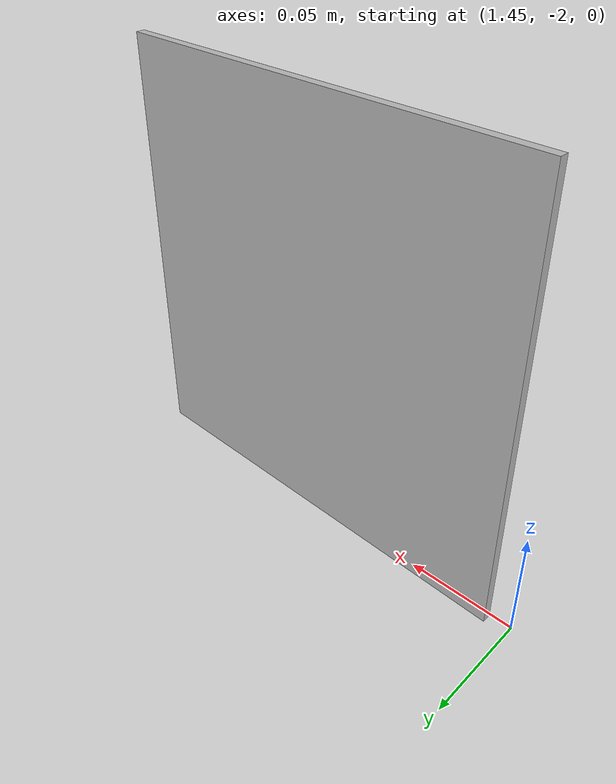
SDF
<?xml version="1.0" ?><sdf version="1.6">
  <model name="qr4">
    <static>true</static>
    <link name="link">
      <visual name="visual">
        <geometry>
          <mesh>
            <uri>model://qr4/meshes/qr4.dae</uri>
          <scale>0.4 0.4 0.4</scale></mesh>
        </geometry>
      </visual>
    </link>
    <pose>1.56 -2 0 0 -0 -1.6</pose>
  </model>
</sdf>
